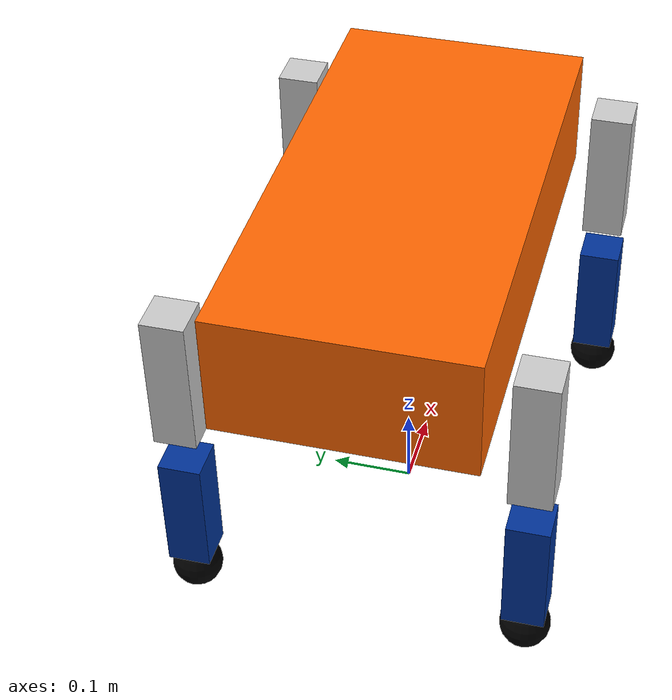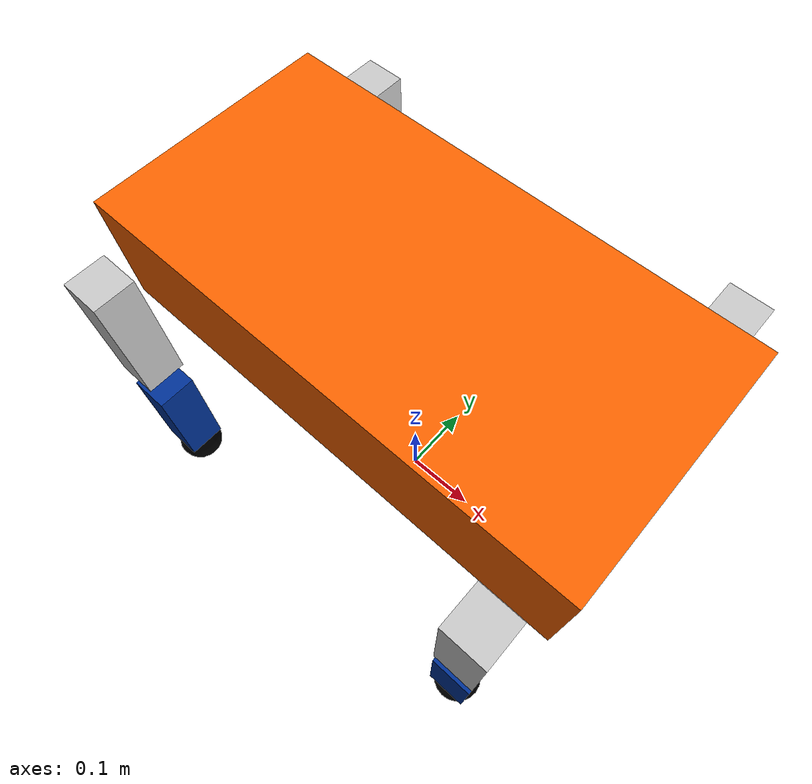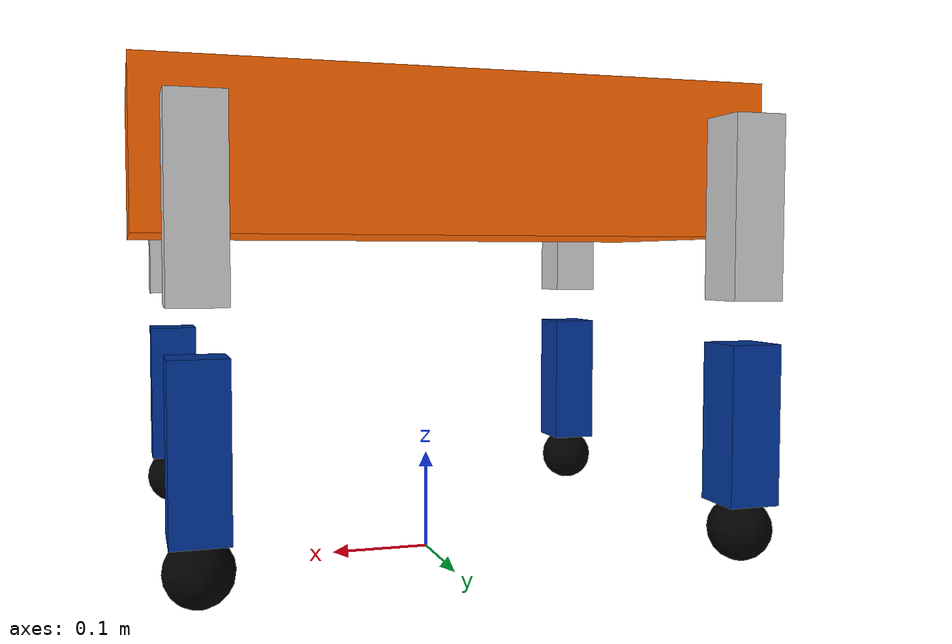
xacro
<?xml version="1.0"?>
<robot name="quadruped_bot" xmlns:xacro="http://ros.org/wiki/xacro">

  <!-- Material definitions -->
  <material name="Black">
    <color rgba="0 0 0 1" />
  </material>
  <material name="Grey">
    <color rgba="0.8 0.8 0.8 1" />
  </material>
  <material name="Orange">
    <color rgba="1 0.4 0 1" />
  </material>
  <material name="White">
    <color rgba="1 1 1 1" />
  </material>
  <material name="Blue">
    <color rgba="0 0.2 0.6 1" />
  </material>

  <!-- Leg macro definition -->
  <xacro:macro name="leg" params="prefix pos_x pos_y pos_z">

    <!-- Thigh link -->
    <link name="${prefix}_thigh">
      <collision>
        <origin xyz="0 0 -0.1" rpy="0 0 0" />
        <geometry>
          <box size="0.05 0.05 0.17" />
        </geometry>
      </collision>
      <visual>
        <origin xyz="0 0 -0.1" rpy="0 0 0" />
        <geometry>
          <box size="0.05 0.05 0.17" />
        </geometry>
        <material name="Grey" />
      </visual>
      <inertial>
        <origin xyz="0 0 -0.1" rpy="0 0 0" />
        <mass value="0.5" />
        <inertia ixx="0.00375" ixy="0.0" ixz="0.0"
                 iyy="0.00375" iyz="0.0" izz="0.00083" />
      </inertial>
    </link>

    <!-- Calf link -->
    <link name="${prefix}_calf">
      <collision>
        <origin xyz="0 0 -0.1" rpy="0 0 0" />
        <geometry>
          <box size="0.05 0.05 0.15" />
        </geometry>
      </collision>
      <visual>
        <origin xyz="0 0 -0.1" rpy="0 0 0" />
        <geometry>
          <box size="0.05 0.05 0.15" />
        </geometry>
        <material name="Blue" />
      </visual>
      <inertial>
        <origin xyz="0 0 -0.1" rpy="0 0 0" />
        <mass value="0.3" />
        <inertia ixx="0.00225" ixy="0.0" ixz="0.0"
                 iyy="0.00225" iyz="0.0" izz="0.00048" />
      </inertial>
    </link>

    <!-- Foot link -->
    <link name="${prefix}_foot">
      <collision>
        <origin xyz="0 0 0" rpy="0 0 0" />
        <geometry>
          <sphere radius="0.03" />
        </geometry>
      </collision>
      <visual>
        <origin xyz="0 0 0" rpy="0 0 0" />
        <geometry>
          <sphere radius="0.03" />
        </geometry>
        <material name="Black" />
      </visual>
      <inertial>
        <origin xyz="0 0 0" rpy="0 0 0" />
        <mass value="0.1" />
        <inertia ixx="0.00036" ixy="0.0" ixz="0.0"
                 iyy="0.00036" iyz="0.0" izz="0.00036" />
      </inertial>
    </link>

    <!-- Hip joint (chassis to thigh) -->
    <joint name="${prefix}_hip_joint" type="revolute">
      <origin xyz="${pos_x} ${pos_y} ${pos_z}" rpy="0 0 0" />
      <parent link="chassis" />
      <child link="${prefix}_thigh" />
      <axis xyz="0 1 0" />
      <limit lower="-1.57" upper="1.57" effort="100" velocity="10" />
      <dynamics damping="0.1" friction="0.1" />
    </joint>

    <!-- Knee joint (thigh to calf) -->
    <joint name="${prefix}_knee_joint" type="revolute">
      <origin xyz="0 0 -0.2" rpy="0 0 0" />
      <parent link="${prefix}_thigh" />
      <child link="${prefix}_calf" />
      <axis xyz="0 1 0" />
      <limit lower="-2.62" upper="0" effort="100" velocity="10" />
      <dynamics damping="0.1" friction="0.1" />
    </joint>

    <!-- Ankle joint (calf to foot) -->
    <joint name="${prefix}_ankle_joint" type="fixed">
      <origin xyz="0 0 -0.2" rpy="0 0 0" />
      <parent link="${prefix}_calf" />
      <child link="${prefix}_foot" />
    </joint>

  </xacro:macro>

  <!-- Base link -->
  <link name="base_link" />

  <!-- Main chassis/body -->
  <link name="chassis">
    <collision>
      <origin xyz="0 0 0" rpy="0 0 0" />
      <geometry>
        <box size="0.6 0.3 0.15" />
      </geometry>
    </collision>
    <visual>
      <origin xyz="0 0 0" rpy="0 0 0" />
      <geometry>
        <box size="0.6 0.3 0.15" />
      </geometry>
      <material name="Orange" />
    </visual>
    <inertial>
      <origin xyz="0 0 0" rpy="0 0 0" />
      <mass value="5.0" />
      <inertia ixx="0.0562" ixy="0.0" ixz="0.0"
               iyy="0.225" iyz="0.0" izz="0.281" />
    </inertial>
  </link>

  <!-- Fixed joint connecting base_link to chassis -->
  <joint name="base_chassis_joint" type="fixed">
    <origin xyz="0 0 0.4" rpy="0 0 0" />
    <parent link="base_link" />
    <child link="chassis" />
  </joint>

  <!-- Instantiate 4 legs using the macro -->
  <!-- Front Right leg -->
  <xacro:leg prefix="fr" pos_x="0.25" pos_y="-0.2" pos_z="0.05" />

  <!-- Front Left leg -->
  <xacro:leg prefix="fl" pos_x="0.25" pos_y="0.2" pos_z="0.05" />

  <!-- Rear Right leg -->
  <xacro:leg prefix="rr" pos_x="-0.25" pos_y="-0.2" pos_z="0.05" />

  <!-- Rear Left leg -->
  <xacro:leg prefix="rl" pos_x="-0.25" pos_y="0.2" pos_z="0.05" />

</robot>
